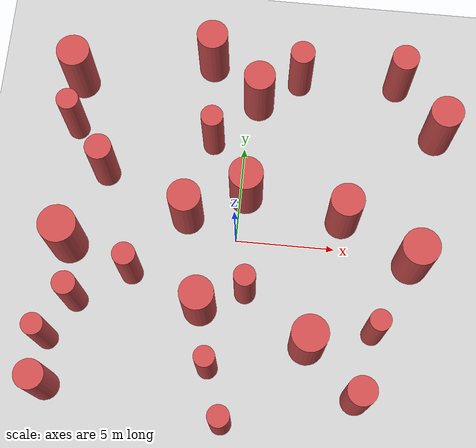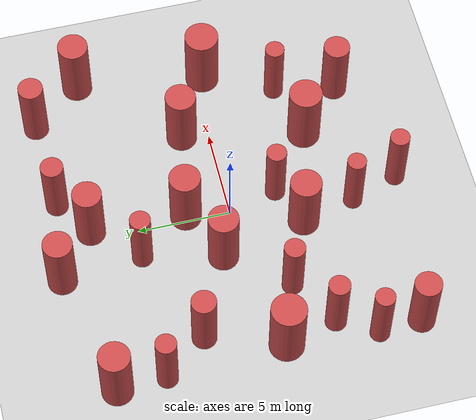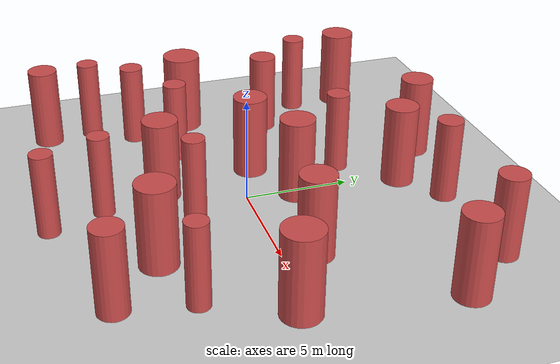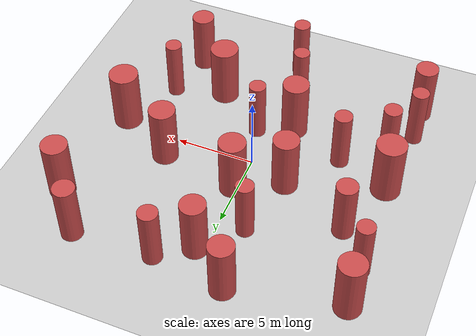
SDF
<?xml version="1.0" ?>
<sdf version="1.7">
  <world name="obstacles">

    <physics type="ode">
      <max_step_size>0.004</max_step_size>
      <real_time_factor>1.0</real_time_factor>
      <real_time_update_rate>250</real_time_update_rate>
    </physics>
    <gravity>0 0 -9.8</gravity>
    <magnetic_field>6e-06 2.3e-05 -4.2e-05</magnetic_field>
    <atmosphere type="adiabatic"/>
    <scene>
      <grid>false</grid>
      <ambient>0.4 0.4 0.4 1</ambient>
      <background>0.7 0.7 0.7 1</background>
      <shadows>true</shadows>
    </scene>
    <model name="ground_plane">
      <static>true</static>
      <link name="link">
        <collision name="collision">
          <geometry>
            <plane>
              <normal>0 0 1</normal>
              <size>1 1</size>
            </plane>
          </geometry>
          <surface>
            <friction>
              <ode/>
            </friction>
            <bounce/>
            <contact/>
          </surface>
        </collision>
        <visual name="visual">
          <geometry>
            <plane>
              <normal>0 0 1</normal>
              <size>500 500</size>
            </plane>
          </geometry>
          <material>
            <ambient>0.8 0.8 0.8 1</ambient>
            <diffuse>0.8 0.8 0.8 1</diffuse>
            <specular>0.8 0.8 0.8 1</specular>
          </material>
        </visual>
        <pose>0 0 0 0 -0 0</pose>
        <inertial>
          <pose>0 0 0 0 -0 0</pose>
          <mass>1</mass>
          <inertia>
            <ixx>1</ixx>
            <ixy>0</ixy>
            <ixz>0</ixz>
            <iyy>1</iyy>
            <iyz>0</iyz>
            <izz>1</izz>
          </inertia>
        </inertial>
        <enable_wind>false</enable_wind>
      </link>
      <pose>0 0 0 0 -0 0</pose>
      <self_collide>false</self_collide>
    </model>
    <light name="sunUTC" type="directional">
      <pose>0 0 500 0 -0 0</pose>
      <cast_shadows>true</cast_shadows>
      <intensity>1</intensity>
      <direction>0.001 0.625 -0.78</direction>
      <diffuse>0.904 0.904 0.904 1</diffuse>
      <specular>0.271 0.271 0.271 1</specular>
      <attenuation>
        <range>2000</range>
        <linear>0</linear>
        <constant>1</constant>
        <quadratic>0</quadratic>
      </attenuation>
      <spot>
        <inner_angle>0</inner_angle>
        <outer_angle>0</outer_angle>
        <falloff>0</falloff>
      </spot>
    </light>
    <spherical_coordinates>
      <surface_model>EARTH_WGS84</surface_model>
      <world_frame_orientation>ENU</world_frame_orientation>
      <latitude_deg>47.397971057728974</latitude_deg>
      <longitude_deg> 8.546163739800146</longitude_deg>
      <elevation>0</elevation>
    </spherical_coordinates>

    <model name="cylinder_000">
      <static>true</static>
      <pose>-6.983017 3.018689 2 0 0 0</pose>

      <link name="link">
        <collision name="collision">
          <geometry>
            <cylinder>
              <radius>0.661916</radius>
              <length>4</length>
            </cylinder>
          </geometry>
        </collision>

        <visual name="visual">
          <geometry>
            <cylinder>
              <radius>0.661916</radius>
              <length>4</length>
            </cylinder>
          </geometry>
          <material>
            <ambient>0.7 0.2 0.2 1</ambient>
            <diffuse>0.8 0.3 0.3 1</diffuse>
          </material>
        </visual>
      </link>
    </model>

    <model name="cylinder_001">
      <static>true</static>
      <pose>0.71764 -2.686222 2 0 0 0</pose>

      <link name="link">
        <collision name="collision">
          <geometry>
            <cylinder>
              <radius>0.536218</radius>
              <length>4</length>
            </cylinder>
          </geometry>
        </collision>

        <visual name="visual">
          <geometry>
            <cylinder>
              <radius>0.536218</radius>
              <length>4</length>
            </cylinder>
          </geometry>
          <material>
            <ambient>0.7 0.2 0.2 1</ambient>
            <diffuse>0.8 0.3 0.3 1</diffuse>
          </material>
        </visual>
      </link>
    </model>

    <model name="cylinder_002">
      <static>true</static>
      <pose>0.148715 -9.250087 2 0 0 0</pose>

      <link name="link">
        <collision name="collision">
          <geometry>
            <cylinder>
              <radius>0.528999</radius>
              <length>4</length>
            </cylinder>
          </geometry>
        </collision>

        <visual name="visual">
          <geometry>
            <cylinder>
              <radius>0.528999</radius>
              <length>4</length>
            </cylinder>
          </geometry>
          <material>
            <ambient>0.7 0.2 0.2 1</ambient>
            <diffuse>0.8 0.3 0.3 1</diffuse>
          </material>
        </visual>
      </link>
    </model>

    <model name="cylinder_003">
      <static>true</static>
      <pose>-8.602892 -8.18574 2 0 0 0</pose>

      <link name="link">
        <collision name="collision">
          <geometry>
            <cylinder>
              <radius>0.716823</radius>
              <length>4</length>
            </cylinder>
          </geometry>
        </collision>

        <visual name="visual">
          <geometry>
            <cylinder>
              <radius>0.716823</radius>
              <length>4</length>
            </cylinder>
          </geometry>
          <material>
            <ambient>0.7 0.2 0.2 1</ambient>
            <diffuse>0.8 0.3 0.3 1</diffuse>
          </material>
        </visual>
      </link>
    </model>

    <model name="cylinder_004">
      <static>true</static>
      <pose>6.537042 -7.523961 2 0 0 0</pose>

      <link name="link">
        <collision name="collision">
          <geometry>
            <cylinder>
              <radius>0.71226</radius>
              <length>4</length>
            </cylinder>
          </geometry>
        </collision>

        <visual name="visual">
          <geometry>
            <cylinder>
              <radius>0.71226</radius>
              <length>4</length>
            </cylinder>
          </geometry>
          <material>
            <ambient>0.7 0.2 0.2 1</ambient>
            <diffuse>0.8 0.3 0.3 1</diffuse>
          </material>
        </visual>
      </link>
    </model>

    <model name="cylinder_005">
      <static>true</static>
      <pose>2.548664 8.954179 2 0 0 0</pose>

      <link name="link">
        <collision name="collision">
          <geometry>
            <cylinder>
              <radius>0.611619</radius>
              <length>4</length>
            </cylinder>
          </geometry>
        </collision>

        <visual name="visual">
          <geometry>
            <cylinder>
              <radius>0.611619</radius>
              <length>4</length>
            </cylinder>
          </geometry>
          <material>
            <ambient>0.7 0.2 0.2 1</ambient>
            <diffuse>0.8 0.3 0.3 1</diffuse>
          </material>
        </visual>
      </link>
    </model>

    <model name="cylinder_006">
      <static>true</static>
      <pose>-2.066391 9.525102 2 0 0 0</pose>

      <link name="link">
        <collision name="collision">
          <geometry>
            <cylinder>
              <radius>0.788551</radius>
              <length>4</length>
            </cylinder>
          </geometry>
        </collision>

        <visual name="visual">
          <geometry>
            <cylinder>
              <radius>0.788551</radius>
              <length>4</length>
            </cylinder>
          </geometry>
          <material>
            <ambient>0.7 0.2 0.2 1</ambient>
            <diffuse>0.8 0.3 0.3 1</diffuse>
          </material>
        </visual>
      </link>
    </model>

    <model name="cylinder_007">
      <static>true</static>
      <pose>7.169369 -4.207814 2 0 0 0</pose>

      <link name="link">
        <collision name="collision">
          <geometry>
            <cylinder>
              <radius>0.523291</radius>
              <length>4</length>
            </cylinder>
          </geometry>
        </collision>

        <visual name="visual">
          <geometry>
            <cylinder>
              <radius>0.523291</radius>
              <length>4</length>
            </cylinder>
          </geometry>
          <material>
            <ambient>0.7 0.2 0.2 1</ambient>
            <diffuse>0.8 0.3 0.3 1</diffuse>
          </material>
        </visual>
      </link>
    </model>

    <model name="cylinder_008">
      <static>true</static>
      <pose>-7.644155 -3.830364 2 0 0 0</pose>

      <link name="link">
        <collision name="collision">
          <geometry>
            <cylinder>
              <radius>0.572128</radius>
              <length>4</length>
            </cylinder>
          </geometry>
        </collision>

        <visual name="visual">
          <geometry>
            <cylinder>
              <radius>0.572128</radius>
              <length>4</length>
            </cylinder>
          </geometry>
          <material>
            <ambient>0.7 0.2 0.2 1</ambient>
            <diffuse>0.8 0.3 0.3 1</diffuse>
          </material>
        </visual>
      </link>
    </model>

    <model name="cylinder_009">
      <static>true</static>
      <pose>-2.552049 0.954889 2 0 0 0</pose>

      <link name="link">
        <collision name="collision">
          <geometry>
            <cylinder>
              <radius>0.819457</radius>
              <length>4</length>
            </cylinder>
          </geometry>
        </collision>

        <visual name="visual">
          <geometry>
            <cylinder>
              <radius>0.819457</radius>
              <length>4</length>
            </cylinder>
          </geometry>
          <material>
            <ambient>0.7 0.2 0.2 1</ambient>
            <diffuse>0.8 0.3 0.3 1</diffuse>
          </material>
        </visual>
      </link>
    </model>

    <model name="cylinder_010">
      <static>true</static>
      <pose>-8.807977 -5.880826 2 0 0 0</pose>

      <link name="link">
        <collision name="collision">
          <geometry>
            <cylinder>
              <radius>0.531394</radius>
              <length>4</length>
            </cylinder>
          </geometry>
        </collision>

        <visual name="visual">
          <geometry>
            <cylinder>
              <radius>0.531394</radius>
              <length>4</length>
            </cylinder>
          </geometry>
          <material>
            <ambient>0.7 0.2 0.2 1</ambient>
            <diffuse>0.8 0.3 0.3 1</diffuse>
          </material>
        </visual>
      </link>
    </model>

    <model name="cylinder_011">
      <static>true</static>
      <pose>-1.448154 -3.717057 2 0 0 0</pose>

      <link name="link">
        <collision name="collision">
          <geometry>
            <cylinder>
              <radius>0.8402</radius>
              <length>4</length>
            </cylinder>
          </geometry>
        </collision>

        <visual name="visual">
          <geometry>
            <cylinder>
              <radius>0.8402</radius>
              <length>4</length>
            </cylinder>
          </geometry>
          <material>
            <ambient>0.7 0.2 0.2 1</ambient>
            <diffuse>0.8 0.3 0.3 1</diffuse>
          </material>
        </visual>
      </link>
    </model>

    <model name="cylinder_012">
      <static>true</static>
      <pose>3.979889 -5.11807 2 0 0 0</pose>

      <link name="link">
        <collision name="collision">
          <geometry>
            <cylinder>
              <radius>0.89719</radius>
              <length>4</length>
            </cylinder>
          </geometry>
        </collision>

        <visual name="visual">
          <geometry>
            <cylinder>
              <radius>0.89719</radius>
              <length>4</length>
            </cylinder>
          </geometry>
          <material>
            <ambient>0.7 0.2 0.2 1</ambient>
            <diffuse>0.8 0.3 0.3 1</diffuse>
          </material>
        </visual>
      </link>
    </model>

    <model name="cylinder_013">
      <static>true</static>
      <pose>0.50393 7.50275 2 0 0 0</pose>

      <link name="link">
        <collision name="collision">
          <geometry>
            <cylinder>
              <radius>0.787212</radius>
              <length>4</length>
            </cylinder>
          </geometry>
        </collision>

        <visual name="visual">
          <geometry>
            <cylinder>
              <radius>0.787212</radius>
              <length>4</length>
            </cylinder>
          </geometry>
          <material>
            <ambient>0.7 0.2 0.2 1</ambient>
            <diffuse>0.8 0.3 0.3 1</diffuse>
          </material>
        </visual>
      </link>
    </model>

    <model name="cylinder_014">
      <static>true</static>
      <pose>-1.637544 5.142819 2 0 0 0</pose>

      <link name="link">
        <collision name="collision">
          <geometry>
            <cylinder>
              <radius>0.559033</radius>
              <length>4</length>
            </cylinder>
          </geometry>
        </collision>

        <visual name="visual">
          <geometry>
            <cylinder>
              <radius>0.559033</radius>
              <length>4</length>
            </cylinder>
          </geometry>
          <material>
            <ambient>0.7 0.2 0.2 1</ambient>
            <diffuse>0.8 0.3 0.3 1</diffuse>
          </material>
        </visual>
      </link>
    </model>

    <model name="cylinder_015">
      <static>true</static>
      <pose>5.291417 1.460519 2 0 0 0</pose>

      <link name="link">
        <collision name="collision">
          <geometry>
            <cylinder>
              <radius>0.834108</radius>
              <length>4</length>
            </cylinder>
          </geometry>
        </collision>

        <visual name="visual">
          <geometry>
            <cylinder>
              <radius>0.834108</radius>
              <length>4</length>
            </cylinder>
          </geometry>
          <material>
            <ambient>0.7 0.2 0.2 1</ambient>
            <diffuse>0.8 0.3 0.3 1</diffuse>
          </material>
        </visual>
      </link>
    </model>

    <model name="cylinder_016">
      <static>true</static>
      <pose>8.893622 -0.518033 2 0 0 0</pose>

      <link name="link">
        <collision name="collision">
          <geometry>
            <cylinder>
              <radius>0.919984</radius>
              <length>4</length>
            </cylinder>
          </geometry>
        </collision>

        <visual name="visual">
          <geometry>
            <cylinder>
              <radius>0.919984</radius>
              <length>4</length>
            </cylinder>
          </geometry>
          <material>
            <ambient>0.7 0.2 0.2 1</ambient>
            <diffuse>0.8 0.3 0.3 1</diffuse>
          </material>
        </visual>
      </link>
    </model>

    <model name="cylinder_017">
      <static>true</static>
      <pose>9.861919 6.438496 2 0 0 0</pose>

      <link name="link">
        <collision name="collision">
          <geometry>
            <cylinder>
              <radius>0.823564</radius>
              <length>4</length>
            </cylinder>
          </geometry>
        </collision>

        <visual name="visual">
          <geometry>
            <cylinder>
              <radius>0.823564</radius>
              <length>4</length>
            </cylinder>
          </geometry>
          <material>
            <ambient>0.7 0.2 0.2 1</ambient>
            <diffuse>0.8 0.3 0.3 1</diffuse>
          </material>
        </visual>
      </link>
    </model>

    <model name="cylinder_018">
      <static>true</static>
      <pose>-0.766094 -6.639032 2 0 0 0</pose>

      <link name="link">
        <collision name="collision">
          <geometry>
            <cylinder>
              <radius>0.511281</radius>
              <length>4</length>
            </cylinder>
          </geometry>
        </collision>

        <visual name="visual">
          <geometry>
            <cylinder>
              <radius>0.511281</radius>
              <length>4</length>
            </cylinder>
          </geometry>
          <material>
            <ambient>0.7 0.2 0.2 1</ambient>
            <diffuse>0.8 0.3 0.3 1</diffuse>
          </material>
        </visual>
      </link>
    </model>

    <model name="cylinder_019">
      <static>true</static>
      <pose>-8.820912 5.36466 2 0 0 0</pose>

      <link name="link">
        <collision name="collision">
          <geometry>
            <cylinder>
              <radius>0.558548</radius>
              <length>4</length>
            </cylinder>
          </geometry>
        </collision>

        <visual name="visual">
          <geometry>
            <cylinder>
              <radius>0.558548</radius>
              <length>4</length>
            </cylinder>
          </geometry>
          <material>
            <ambient>0.7 0.2 0.2 1</ambient>
            <diffuse>0.8 0.3 0.3 1</diffuse>
          </material>
        </visual>
      </link>
    </model>

    <model name="cylinder_020">
      <static>true</static>
      <pose>-5.047703 -2.181006 2 0 0 0</pose>

      <link name="link">
        <collision name="collision">
          <geometry>
            <cylinder>
              <radius>0.56467</radius>
              <length>4</length>
            </cylinder>
          </geometry>
        </collision>

        <visual name="visual">
          <geometry>
            <cylinder>
              <radius>0.56467</radius>
              <length>4</length>
            </cylinder>
          </geometry>
          <material>
            <ambient>0.7 0.2 0.2 1</ambient>
            <diffuse>0.8 0.3 0.3 1</diffuse>
          </material>
        </visual>
      </link>
    </model>

    <model name="cylinder_021">
      <static>true</static>
      <pose>-8.388374 -1.016252 2 0 0 0</pose>

      <link name="link">
        <collision name="collision">
          <geometry>
            <cylinder>
              <radius>0.935711</radius>
              <length>4</length>
            </cylinder>
          </geometry>
        </collision>

        <visual name="visual">
          <geometry>
            <cylinder>
              <radius>0.935711</radius>
              <length>4</length>
            </cylinder>
          </geometry>
          <material>
            <ambient>0.7 0.2 0.2 1</ambient>
            <diffuse>0.8 0.3 0.3 1</diffuse>
          </material>
        </visual>
      </link>
    </model>

    <model name="cylinder_022">
      <static>true</static>
      <pose>7.683857 9.154624 2 0 0 0</pose>

      <link name="link">
        <collision name="collision">
          <geometry>
            <cylinder>
              <radius>0.679386</radius>
              <length>4</length>
            </cylinder>
          </geometry>
        </collision>

        <visual name="visual">
          <geometry>
            <cylinder>
              <radius>0.679386</radius>
              <length>4</length>
            </cylinder>
          </geometry>
          <material>
            <ambient>0.7 0.2 0.2 1</ambient>
            <diffuse>0.8 0.3 0.3 1</diffuse>
          </material>
        </visual>
      </link>
    </model>

    <model name="cylinder_023">
      <static>true</static>
      <pose>0.309829 2.351855 2 0 0 0</pose>

      <link name="link">
        <collision name="collision">
          <geometry>
            <cylinder>
              <radius>0.845247</radius>
              <length>4</length>
            </cylinder>
          </geometry>
        </collision>

        <visual name="visual">
          <geometry>
            <cylinder>
              <radius>0.845247</radius>
              <length>4</length>
            </cylinder>
          </geometry>
          <material>
            <ambient>0.7 0.2 0.2 1</ambient>
            <diffuse>0.8 0.3 0.3 1</diffuse>
          </material>
        </visual>
      </link>
    </model>

    <model name="cylinder_024">
      <static>true</static>
      <pose>-8.920142 7.99066 2 0 0 0</pose>

      <link name="link">
        <collision name="collision">
          <geometry>
            <cylinder>
              <radius>0.8381</radius>
              <length>4</length>
            </cylinder>
          </geometry>
        </collision>

        <visual name="visual">
          <geometry>
            <cylinder>
              <radius>0.8381</radius>
              <length>4</length>
            </cylinder>
          </geometry>
          <material>
            <ambient>0.7 0.2 0.2 1</ambient>
            <diffuse>0.8 0.3 0.3 1</diffuse>
          </material>
        </visual>
      </link>
    </model>
  </world>
</sdf>
